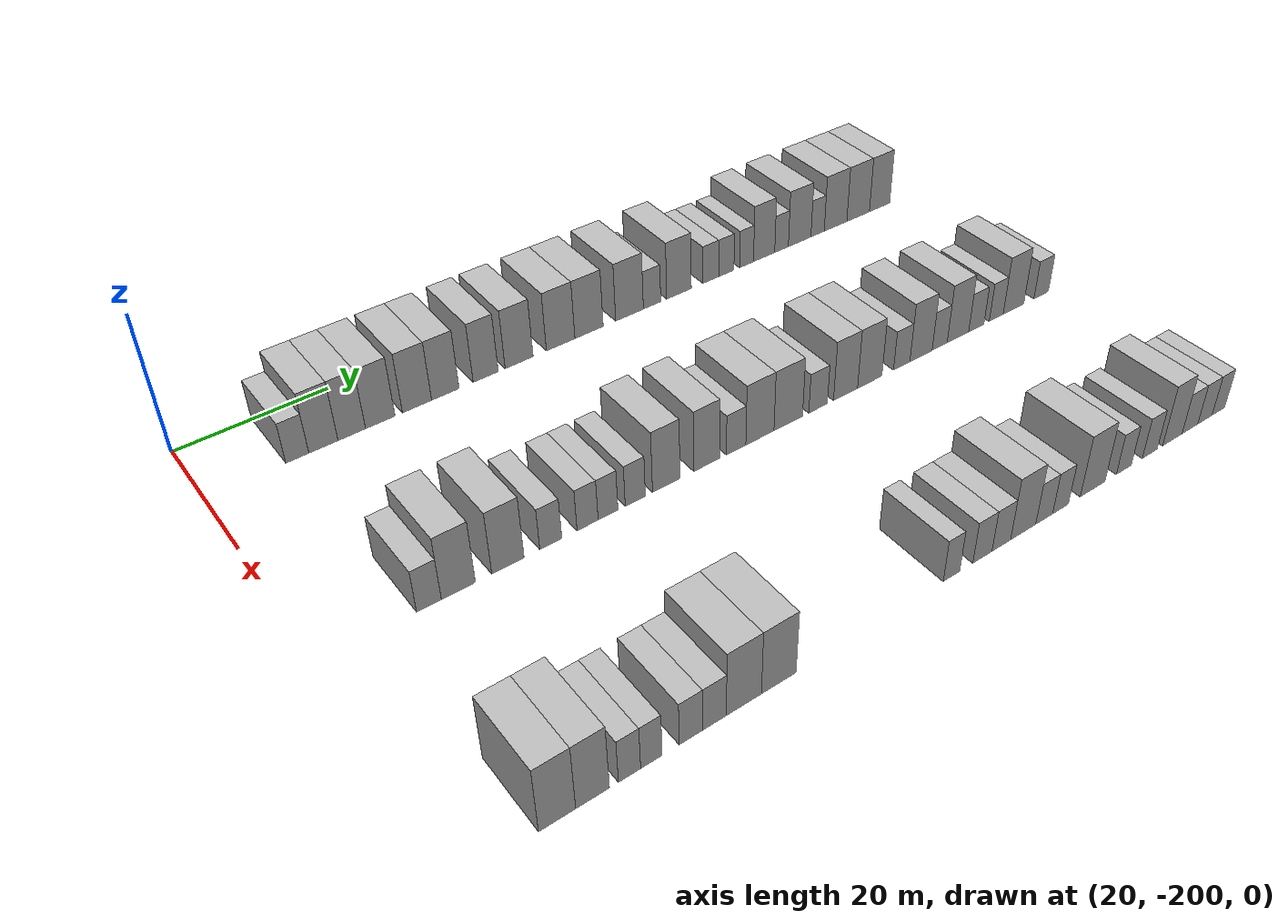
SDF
<sdf version="1.6">
 <world name="default">
  <model name="building_24">
   <static>1</static>
   <pose>25.0000 -188.5911 0 0.000000 0.000000 0.000000</pose>
   <link name="link">
    <pose>0 0 3.00 0 0 0</pose>
    <collision name="collision"><geometry><box><size>10.0000 2.9050 6.0000</size></box></geometry></collision>
    <visual name="visual">
     <cast_shadows>0</cast_shadows>
     <geometry><box><size>10.0000 2.9050 6.0000</size></box></geometry>
     <material>
      <script>
       <uri>model://HANNAS_wall/materials/scripts</uri>
       <uri>model://HANNAS_wall/materials/textures</uri>
       <name>vrc/HANNAS_wall</name>
      </script>
     </material>
    </visual>
   </link>
  </model>
  <model name="building_25">
   <static>1</static>
   <pose>25.0000 -185.2728 0 0.000000 0.000000 0.000000</pose>
   <link name="link">
    <pose>0 0 4.50 0 0 0</pose>
    <collision name="collision"><geometry><box><size>10.0000 3.7317 9.0000</size></box></geometry></collision>
    <visual name="visual">
     <cast_shadows>0</cast_shadows>
     <geometry><box><size>10.0000 3.7317 9.0000</size></box></geometry>
     <material>
      <script>
       <uri>model://HANNAS_wall/materials/scripts</uri>
       <uri>model://HANNAS_wall/materials/textures</uri>
       <name>vrc/HANNAS_wall</name>
      </script>
     </material>
    </visual>
   </link>
  </model>
  <model name="building_26">
   <static>1</static>
   <pose>25.0000 -181.6056 0 0.000000 0.000000 0.000000</pose>
   <link name="link">
    <pose>0 0 4.50 0 0 0</pose>
    <collision name="collision"><geometry><box><size>10.0000 3.6027 9.0000</size></box></geometry></collision>
    <visual name="visual">
     <cast_shadows>0</cast_shadows>
     <geometry><box><size>10.0000 3.6027 9.0000</size></box></geometry>
     <material>
      <script>
       <uri>model://HANNAS_wall/materials/scripts</uri>
       <uri>model://HANNAS_wall/materials/textures</uri>
       <name>vrc/HANNAS_wall</name>
      </script>
     </material>
    </visual>
   </link>
  </model>
  <model name="building_27">
   <static>1</static>
   <pose>25.0000 -177.8339 0 0.000000 0.000000 0.000000</pose>
   <link name="link">
    <pose>0 0 4.50 0 0 0</pose>
    <collision name="collision"><geometry><box><size>10.0000 3.9406 9.0000</size></box></geometry></collision>
    <visual name="visual">
     <cast_shadows>0</cast_shadows>
     <geometry><box><size>10.0000 3.9406 9.0000</size></box></geometry>
     <material>
      <script>
       <uri>model://HANNAS_wall/materials/scripts</uri>
       <uri>model://HANNAS_wall/materials/textures</uri>
       <name>vrc/HANNAS_wall</name>
      </script>
     </material>
    </visual>
   </link>
  </model>
  <model name="building_28">
   <static>1</static>
   <pose>25.0000 -172.8596 0 0.000000 0.000000 0.000000</pose>
   <link name="link">
    <pose>0 0 4.50 0 0 0</pose>
    <collision name="collision"><geometry><box><size>10.0000 4.0081 9.0000</size></box></geometry></collision>
    <visual name="visual">
     <cast_shadows>0</cast_shadows>
     <geometry><box><size>10.0000 4.0081 9.0000</size></box></geometry>
     <material>
      <script>
       <uri>model://HANNAS_wall/materials/scripts</uri>
       <uri>model://HANNAS_wall/materials/textures</uri>
       <name>vrc/HANNAS_wall</name>
      </script>
     </material>
    </visual>
   </link>
  </model>
  <model name="building_29">
   <static>1</static>
   <pose>25.0000 -168.9246 0 0.000000 0.000000 0.000000</pose>
   <link name="link">
    <pose>0 0 4.50 0 0 0</pose>
    <collision name="collision"><geometry><box><size>10.0000 3.8620 9.0000</size></box></geometry></collision>
    <visual name="visual">
     <cast_shadows>0</cast_shadows>
     <geometry><box><size>10.0000 3.8620 9.0000</size></box></geometry>
     <material>
      <script>
       <uri>model://HANNAS_wall/materials/scripts</uri>
       <uri>model://HANNAS_wall/materials/textures</uri>
       <name>vrc/HANNAS_wall</name>
      </script>
     </material>
    </visual>
   </link>
  </model>
  <model name="building_30">
   <static>1</static>
   <pose>25.0000 -163.1780 0 0.000000 0.000000 0.000000</pose>
   <link name="link">
    <pose>0 0 4.50 0 0 0</pose>
    <collision name="collision"><geometry><box><size>10.0000 3.6312 9.0000</size></box></geometry></collision>
    <visual name="visual">
     <cast_shadows>0</cast_shadows>
     <geometry><box><size>10.0000 3.6312 9.0000</size></box></geometry>
     <material>
      <script>
       <uri>model://HANNAS_wall/materials/scripts</uri>
       <uri>model://HANNAS_wall/materials/textures</uri>
       <name>vrc/HANNAS_wall</name>
      </script>
     </material>
    </visual>
   </link>
  </model>
  <model name="building_31">
   <static>1</static>
   <pose>25.0000 -158.2871 0 0.000000 0.000000 0.000000</pose>
   <link name="link">
    <pose>0 0 4.50 0 0 0</pose>
    <collision name="collision"><geometry><box><size>10.0000 4.1505 9.0000</size></box></geometry></collision>
    <visual name="visual">
     <cast_shadows>0</cast_shadows>
     <geometry><box><size>10.0000 4.1505 9.0000</size></box></geometry>
     <material>
      <script>
       <uri>model://HANNAS_wall/materials/scripts</uri>
       <uri>model://HANNAS_wall/materials/textures</uri>
       <name>vrc/HANNAS_wall</name>
      </script>
     </material>
    </visual>
   </link>
  </model>
  <model name="building_32">
   <static>1</static>
   <pose>25.0000 -152.0223 0 0.000000 0.000000 0.000000</pose>
   <link name="link">
    <pose>0 0 4.50 0 0 0</pose>
    <collision name="collision"><geometry><box><size>10.0000 4.3792 9.0000</size></box></geometry></collision>
    <visual name="visual">
     <cast_shadows>0</cast_shadows>
     <geometry><box><size>10.0000 4.3792 9.0000</size></box></geometry>
     <material>
      <script>
       <uri>model://HANNAS_wall/materials/scripts</uri>
       <uri>model://HANNAS_wall/materials/textures</uri>
       <name>vrc/HANNAS_wall</name>
      </script>
     </material>
    </visual>
   </link>
  </model>
  <model name="building_33">
   <static>1</static>
   <pose>25.0000 -147.6167 0 0.000000 0.000000 0.000000</pose>
   <link name="link">
    <pose>0 0 4.50 0 0 0</pose>
    <collision name="collision"><geometry><box><size>10.0000 4.4319 9.0000</size></box></geometry></collision>
    <visual name="visual">
     <cast_shadows>0</cast_shadows>
     <geometry><box><size>10.0000 4.4319 9.0000</size></box></geometry>
     <material>
      <script>
       <uri>model://HANNAS_wall/materials/scripts</uri>
       <uri>model://HANNAS_wall/materials/textures</uri>
       <name>vrc/HANNAS_wall</name>
      </script>
     </material>
    </visual>
   </link>
  </model>
  <model name="building_34">
   <static>1</static>
   <pose>25.0000 -141.1588 0 0.000000 0.000000 0.000000</pose>
   <link name="link">
    <pose>0 0 4.50 0 0 0</pose>
    <collision name="collision"><geometry><box><size>10.0000 4.4839 9.0000</size></box></geometry></collision>
    <visual name="visual">
     <cast_shadows>0</cast_shadows>
     <geometry><box><size>10.0000 4.4839 9.0000</size></box></geometry>
     <material>
      <script>
       <uri>model://HANNAS_wall/materials/scripts</uri>
       <uri>model://HANNAS_wall/materials/textures</uri>
       <name>vrc/HANNAS_wall</name>
      </script>
     </material>
    </visual>
   </link>
  </model>
  <model name="building_35">
   <static>1</static>
   <pose>25.0000 -137.4873 0 0.000000 0.000000 0.000000</pose>
   <link name="link">
    <pose>0 0 3.00 0 0 0</pose>
    <collision name="collision"><geometry><box><size>10.0000 2.8592 6.0000</size></box></geometry></collision>
    <visual name="visual">
     <cast_shadows>0</cast_shadows>
     <geometry><box><size>10.0000 2.8592 6.0000</size></box></geometry>
     <material>
      <script>
       <uri>model://HANNAS_wall/materials/scripts</uri>
       <uri>model://HANNAS_wall/materials/textures</uri>
       <name>vrc/HANNAS_wall</name>
      </script>
     </material>
    </visual>
   </link>
  </model>
  <model name="building_36">
   <static>1</static>
   <pose>25.0000 -132.9825 0 0.000000 0.000000 0.000000</pose>
   <link name="link">
    <pose>0 0 4.50 0 0 0</pose>
    <collision name="collision"><geometry><box><size>10.0000 4.1504 9.0000</size></box></geometry></collision>
    <visual name="visual">
     <cast_shadows>0</cast_shadows>
     <geometry><box><size>10.0000 4.1504 9.0000</size></box></geometry>
     <material>
      <script>
       <uri>model://HANNAS_wall/materials/scripts</uri>
       <uri>model://HANNAS_wall/materials/textures</uri>
       <name>vrc/HANNAS_wall</name>
      </script>
     </material>
    </visual>
   </link>
  </model>
  <model name="building_37">
   <static>1</static>
   <pose>25.0000 -127.5527 0 0.000000 0.000000 0.000000</pose>
   <link name="link">
    <pose>0 0 3.00 0 0 0</pose>
    <collision name="collision"><geometry><box><size>10.0000 2.7092 6.0000</size></box></geometry></collision>
    <visual name="visual">
     <cast_shadows>0</cast_shadows>
     <geometry><box><size>10.0000 2.7092 6.0000</size></box></geometry>
     <material>
      <script>
       <uri>model://HANNAS_wall/materials/scripts</uri>
       <uri>model://HANNAS_wall/materials/textures</uri>
       <name>vrc/HANNAS_wall</name>
      </script>
     </material>
    </visual>
   </link>
  </model>
  <model name="building_38">
   <static>1</static>
   <pose>25.0000 -124.8525 0 0.000000 0.000000 0.000000</pose>
   <link name="link">
    <pose>0 0 3.00 0 0 0</pose>
    <collision name="collision"><geometry><box><size>10.0000 2.6913 6.0000</size></box></geometry></collision>
    <visual name="visual">
     <cast_shadows>0</cast_shadows>
     <geometry><box><size>10.0000 2.6913 6.0000</size></box></geometry>
     <material>
      <script>
       <uri>model://HANNAS_wall/materials/scripts</uri>
       <uri>model://HANNAS_wall/materials/textures</uri>
       <name>vrc/HANNAS_wall</name>
      </script>
     </material>
    </visual>
   </link>
  </model>
  <model name="building_39">
   <static>1</static>
   <pose>25.0000 -121.2615 0 0.000000 0.000000 0.000000</pose>
   <link name="link">
    <pose>0 0 3.00 0 0 0</pose>
    <collision name="collision"><geometry><box><size>10.0000 2.4906 6.0000</size></box></geometry></collision>
    <visual name="visual">
     <cast_shadows>0</cast_shadows>
     <geometry><box><size>10.0000 2.4906 6.0000</size></box></geometry>
     <material>
      <script>
       <uri>model://HANNAS_wall/materials/scripts</uri>
       <uri>model://HANNAS_wall/materials/textures</uri>
       <name>vrc/HANNAS_wall</name>
      </script>
     </material>
    </visual>
   </link>
  </model>
  <model name="building_40">
   <static>1</static>
   <pose>25.0000 -118.0930 0 0.000000 0.000000 0.000000</pose>
   <link name="link">
    <pose>0 0 4.50 0 0 0</pose>
    <collision name="collision"><geometry><box><size>10.0000 3.8465 9.0000</size></box></geometry></collision>
    <visual name="visual">
     <cast_shadows>0</cast_shadows>
     <geometry><box><size>10.0000 3.8465 9.0000</size></box></geometry>
     <material>
      <script>
       <uri>model://HANNAS_wall/materials/scripts</uri>
       <uri>model://HANNAS_wall/materials/textures</uri>
       <name>vrc/HANNAS_wall</name>
      </script>
     </material>
    </visual>
   </link>
  </model>
  <model name="building_41">
   <static>1</static>
   <pose>25.0000 -114.9120 0 0.000000 0.000000 0.000000</pose>
   <link name="link">
    <pose>0 0 3.00 0 0 0</pose>
    <collision name="collision"><geometry><box><size>10.0000 2.5156 6.0000</size></box></geometry></collision>
    <visual name="visual">
     <cast_shadows>0</cast_shadows>
     <geometry><box><size>10.0000 2.5156 6.0000</size></box></geometry>
     <material>
      <script>
       <uri>model://HANNAS_wall/materials/scripts</uri>
       <uri>model://HANNAS_wall/materials/textures</uri>
       <name>vrc/HANNAS_wall</name>
      </script>
     </material>
    </visual>
   </link>
  </model>
  <model name="building_42">
   <static>1</static>
   <pose>25.0000 -111.5433 0 0.000000 0.000000 0.000000</pose>
   <link name="link">
    <pose>0 0 4.50 0 0 0</pose>
    <collision name="collision"><geometry><box><size>10.0000 4.2218 9.0000</size></box></geometry></collision>
    <visual name="visual">
     <cast_shadows>0</cast_shadows>
     <geometry><box><size>10.0000 4.2218 9.0000</size></box></geometry>
     <material>
      <script>
       <uri>model://HANNAS_wall/materials/scripts</uri>
       <uri>model://HANNAS_wall/materials/textures</uri>
       <name>vrc/HANNAS_wall</name>
      </script>
     </material>
    </visual>
   </link>
  </model>
  <model name="building_43">
   <static>1</static>
   <pose>25.0000 -108.1688 0 0.000000 0.000000 0.000000</pose>
   <link name="link">
    <pose>0 0 3.00 0 0 0</pose>
    <collision name="collision"><geometry><box><size>10.0000 2.5272 6.0000</size></box></geometry></collision>
    <visual name="visual">
     <cast_shadows>0</cast_shadows>
     <geometry><box><size>10.0000 2.5272 6.0000</size></box></geometry>
     <material>
      <script>
       <uri>model://HANNAS_wall/materials/scripts</uri>
       <uri>model://HANNAS_wall/materials/textures</uri>
       <name>vrc/HANNAS_wall</name>
      </script>
     </material>
    </visual>
   </link>
  </model>
  <model name="building_44">
   <static>1</static>
   <pose>25.0000 -104.7201 0 0.000000 0.000000 0.000000</pose>
   <link name="link">
    <pose>0 0 4.50 0 0 0</pose>
    <collision name="collision"><geometry><box><size>10.0000 4.3703 9.0000</size></box></geometry></collision>
    <visual name="visual">
     <cast_shadows>0</cast_shadows>
     <geometry><box><size>10.0000 4.3703 9.0000</size></box></geometry>
     <material>
      <script>
       <uri>model://HANNAS_wall/materials/scripts</uri>
       <uri>model://HANNAS_wall/materials/textures</uri>
       <name>vrc/HANNAS_wall</name>
      </script>
     </material>
    </visual>
   </link>
  </model>
  <model name="building_45">
   <static>1</static>
   <pose>25.0000 -100.3154 0 0.000000 0.000000 0.000000</pose>
   <link name="link">
    <pose>0 0 4.50 0 0 0</pose>
    <collision name="collision"><geometry><box><size>10.0000 4.4391 9.0000</size></box></geometry></collision>
    <visual name="visual">
     <cast_shadows>0</cast_shadows>
     <geometry><box><size>10.0000 4.4391 9.0000</size></box></geometry>
     <material>
      <script>
       <uri>model://HANNAS_wall/materials/scripts</uri>
       <uri>model://HANNAS_wall/materials/textures</uri>
       <name>vrc/HANNAS_wall</name>
      </script>
     </material>
    </visual>
   </link>
  </model>
  <model name="building_46">
   <static>1</static>
   <pose>25.0000 -96.0658 0 0.000000 0.000000 0.000000</pose>
   <link name="link">
    <pose>0 0 4.50 0 0 0</pose>
    <collision name="collision"><geometry><box><size>10.0000 4.0601 9.0000</size></box></geometry></collision>
    <visual name="visual">
     <cast_shadows>0</cast_shadows>
     <geometry><box><size>10.0000 4.0601 9.0000</size></box></geometry>
     <material>
      <script>
       <uri>model://HANNAS_wall/materials/scripts</uri>
       <uri>model://HANNAS_wall/materials/textures</uri>
       <name>vrc/HANNAS_wall</name>
      </script>
     </material>
    </visual>
   </link>
  </model>
  <model name="building_167">
   <static>1</static>
   <pose>55.0000 -187.3549 0 0.000000 0.000000 0.000000</pose>
   <link name="link">
    <pose>0 0 3.00 0 0 0</pose>
    <collision name="collision"><geometry><box><size>10.0000 2.9119 6.0000</size></box></geometry></collision>
    <visual name="visual">
     <cast_shadows>0</cast_shadows>
     <geometry><box><size>10.0000 2.9119 6.0000</size></box></geometry>
     <material>
      <script>
       <uri>model://HANNAS_wall/materials/scripts</uri>
       <uri>model://HANNAS_wall/materials/textures</uri>
       <name>vrc/HANNAS_wall</name>
      </script>
     </material>
    </visual>
   </link>
  </model>
  <model name="building_168">
   <static>1</static>
   <pose>55.0000 -183.8552 0 0.000000 0.000000 0.000000</pose>
   <link name="link">
    <pose>0 0 4.50 0 0 0</pose>
    <collision name="collision"><geometry><box><size>10.0000 4.0874 9.0000</size></box></geometry></collision>
    <visual name="visual">
     <cast_shadows>0</cast_shadows>
     <geometry><box><size>10.0000 4.0874 9.0000</size></box></geometry>
     <material>
      <script>
       <uri>model://HANNAS_wall/materials/scripts</uri>
       <uri>model://HANNAS_wall/materials/textures</uri>
       <name>vrc/HANNAS_wall</name>
      </script>
     </material>
    </visual>
   </link>
  </model>
  <model name="building_169">
   <static>1</static>
   <pose>55.0000 -177.7942 0 0.000000 0.000000 0.000000</pose>
   <link name="link">
    <pose>0 0 4.50 0 0 0</pose>
    <collision name="collision"><geometry><box><size>10.0000 4.0347 9.0000</size></box></geometry></collision>
    <visual name="visual">
     <cast_shadows>0</cast_shadows>
     <geometry><box><size>10.0000 4.0347 9.0000</size></box></geometry>
     <material>
      <script>
       <uri>model://HANNAS_wall/materials/scripts</uri>
       <uri>model://HANNAS_wall/materials/textures</uri>
       <name>vrc/HANNAS_wall</name>
      </script>
     </material>
    </visual>
   </link>
  </model>
  <model name="building_170">
   <static>1</static>
   <pose>55.0000 -172.3576 0 0.000000 0.000000 0.000000</pose>
   <link name="link">
    <pose>0 0 3.00 0 0 0</pose>
    <collision name="collision"><geometry><box><size>10.0000 2.8383 6.0000</size></box></geometry></collision>
    <visual name="visual">
     <cast_shadows>0</cast_shadows>
     <geometry><box><size>10.0000 2.8383 6.0000</size></box></geometry>
     <material>
      <script>
       <uri>model://HANNAS_wall/materials/scripts</uri>
       <uri>model://HANNAS_wall/materials/textures</uri>
       <name>vrc/HANNAS_wall</name>
      </script>
     </material>
    </visual>
   </link>
  </model>
  <model name="building_171">
   <static>1</static>
   <pose>55.0000 -167.5377 0 0.000000 0.000000 0.000000</pose>
   <link name="link">
    <pose>0 0 3.00 0 0 0</pose>
    <collision name="collision"><geometry><box><size>10.0000 2.8016 6.0000</size></box></geometry></collision>
    <visual name="visual">
     <cast_shadows>0</cast_shadows>
     <geometry><box><size>10.0000 2.8016 6.0000</size></box></geometry>
     <material>
      <script>
       <uri>model://HANNAS_wall/materials/scripts</uri>
       <uri>model://HANNAS_wall/materials/textures</uri>
       <name>vrc/HANNAS_wall</name>
      </script>
     </material>
    </visual>
   </link>
  </model>
  <model name="building_172">
   <static>1</static>
   <pose>55.0000 -164.8018 0 0.000000 0.000000 0.000000</pose>
   <link name="link">
    <pose>0 0 3.00 0 0 0</pose>
    <collision name="collision"><geometry><box><size>10.0000 2.6701 6.0000</size></box></geometry></collision>
    <visual name="visual">
     <cast_shadows>0</cast_shadows>
     <geometry><box><size>10.0000 2.6701 6.0000</size></box></geometry>
     <material>
      <script>
       <uri>model://HANNAS_wall/materials/scripts</uri>
       <uri>model://HANNAS_wall/materials/textures</uri>
       <name>vrc/HANNAS_wall</name>
      </script>
     </material>
    </visual>
   </link>
  </model>
  <model name="building_173">
   <static>1</static>
   <pose>55.0000 -161.0786 0 0.000000 0.000000 0.000000</pose>
   <link name="link">
    <pose>0 0 3.00 0 0 0</pose>
    <collision name="collision"><geometry><box><size>10.0000 2.7764 6.0000</size></box></geometry></collision>
    <visual name="visual">
     <cast_shadows>0</cast_shadows>
     <geometry><box><size>10.0000 2.7764 6.0000</size></box></geometry>
     <material>
      <script>
       <uri>model://HANNAS_wall/materials/scripts</uri>
       <uri>model://HANNAS_wall/materials/textures</uri>
       <name>vrc/HANNAS_wall</name>
      </script>
     </material>
    </visual>
   </link>
  </model>
  <model name="building_174">
   <static>1</static>
   <pose>55.0000 -156.7425 0 0.000000 0.000000 0.000000</pose>
   <link name="link">
    <pose>0 0 4.50 0 0 0</pose>
    <collision name="collision"><geometry><box><size>10.0000 3.8958 9.0000</size></box></geometry></collision>
    <visual name="visual">
     <cast_shadows>0</cast_shadows>
     <geometry><box><size>10.0000 3.8958 9.0000</size></box></geometry>
     <material>
      <script>
       <uri>model://HANNAS_wall/materials/scripts</uri>
       <uri>model://HANNAS_wall/materials/textures</uri>
       <name>vrc/HANNAS_wall</name>
      </script>
     </material>
    </visual>
   </link>
  </model>
  <model name="building_175">
   <static>1</static>
   <pose>55.0000 -150.9045 0 0.000000 0.000000 0.000000</pose>
   <link name="link">
    <pose>0 0 4.50 0 0 0</pose>
    <collision name="collision"><geometry><box><size>10.0000 3.7802 9.0000</size></box></geometry></collision>
    <visual name="visual">
     <cast_shadows>0</cast_shadows>
     <geometry><box><size>10.0000 3.7802 9.0000</size></box></geometry>
     <material>
      <script>
       <uri>model://HANNAS_wall/materials/scripts</uri>
       <uri>model://HANNAS_wall/materials/textures</uri>
       <name>vrc/HANNAS_wall</name>
      </script>
     </material>
    </visual>
   </link>
  </model>
  <model name="building_176">
   <static>1</static>
   <pose>55.0000 -146.5587 0 0.000000 0.000000 0.000000</pose>
   <link name="link">
    <pose>0 0 3.00 0 0 0</pose>
    <collision name="collision"><geometry><box><size>10.0000 2.9114 6.0000</size></box></geometry></collision>
    <visual name="visual">
     <cast_shadows>0</cast_shadows>
     <geometry><box><size>10.0000 2.9114 6.0000</size></box></geometry>
     <material>
      <script>
       <uri>model://HANNAS_wall/materials/scripts</uri>
       <uri>model://HANNAS_wall/materials/textures</uri>
       <name>vrc/HANNAS_wall</name>
      </script>
     </material>
    </visual>
   </link>
  </model>
  <model name="building_177">
   <static>1</static>
   <pose>55.0000 -142.9433 0 0.000000 0.000000 0.000000</pose>
   <link name="link">
    <pose>0 0 4.50 0 0 0</pose>
    <collision name="collision"><geometry><box><size>10.0000 4.3194 9.0000</size></box></geometry></collision>
    <visual name="visual">
     <cast_shadows>0</cast_shadows>
     <geometry><box><size>10.0000 4.3194 9.0000</size></box></geometry>
     <material>
      <script>
       <uri>model://HANNAS_wall/materials/scripts</uri>
       <uri>model://HANNAS_wall/materials/textures</uri>
       <name>vrc/HANNAS_wall</name>
      </script>
     </material>
    </visual>
   </link>
  </model>
  <model name="building_178">
   <static>1</static>
   <pose>55.0000 -138.5398 0 0.000000 0.000000 0.000000</pose>
   <link name="link">
    <pose>0 0 4.50 0 0 0</pose>
    <collision name="collision"><geometry><box><size>10.0000 4.4876 9.0000</size></box></geometry></collision>
    <visual name="visual">
     <cast_shadows>0</cast_shadows>
     <geometry><box><size>10.0000 4.4876 9.0000</size></box></geometry>
     <material>
      <script>
       <uri>model://HANNAS_wall/materials/scripts</uri>
       <uri>model://HANNAS_wall/materials/textures</uri>
       <name>vrc/HANNAS_wall</name>
      </script>
     </material>
    </visual>
   </link>
  </model>
  <model name="building_179">
   <static>1</static>
   <pose>55.0000 -133.7980 0 0.000000 0.000000 0.000000</pose>
   <link name="link">
    <pose>0 0 3.00 0 0 0</pose>
    <collision name="collision"><geometry><box><size>10.0000 2.9959 6.0000</size></box></geometry></collision>
    <visual name="visual">
     <cast_shadows>0</cast_shadows>
     <geometry><box><size>10.0000 2.9959 6.0000</size></box></geometry>
     <material>
      <script>
       <uri>model://HANNAS_wall/materials/scripts</uri>
       <uri>model://HANNAS_wall/materials/textures</uri>
       <name>vrc/HANNAS_wall</name>
      </script>
     </material>
    </visual>
   </link>
  </model>
  <model name="building_180">
   <static>1</static>
   <pose>55.0000 -129.3139 0 0.000000 0.000000 0.000000</pose>
   <link name="link">
    <pose>0 0 4.50 0 0 0</pose>
    <collision name="collision"><geometry><box><size>10.0000 3.9723 9.0000</size></box></geometry></collision>
    <visual name="visual">
     <cast_shadows>0</cast_shadows>
     <geometry><box><size>10.0000 3.9723 9.0000</size></box></geometry>
     <material>
      <script>
       <uri>model://HANNAS_wall/materials/scripts</uri>
       <uri>model://HANNAS_wall/materials/textures</uri>
       <name>vrc/HANNAS_wall</name>
      </script>
     </material>
    </visual>
   </link>
  </model>
  <model name="building_181">
   <static>1</static>
   <pose>55.0000 -125.2691 0 0.000000 0.000000 0.000000</pose>
   <link name="link">
    <pose>0 0 4.50 0 0 0</pose>
    <collision name="collision"><geometry><box><size>10.0000 4.1173 9.0000</size></box></geometry></collision>
    <visual name="visual">
     <cast_shadows>0</cast_shadows>
     <geometry><box><size>10.0000 4.1173 9.0000</size></box></geometry>
     <material>
      <script>
       <uri>model://HANNAS_wall/materials/scripts</uri>
       <uri>model://HANNAS_wall/materials/textures</uri>
       <name>vrc/HANNAS_wall</name>
      </script>
     </material>
    </visual>
   </link>
  </model>
  <model name="building_182">
   <static>1</static>
   <pose>55.0000 -119.7920 0 0.000000 0.000000 0.000000</pose>
   <link name="link">
    <pose>0 0 3.00 0 0 0</pose>
    <collision name="collision"><geometry><box><size>10.0000 2.8369 6.0000</size></box></geometry></collision>
    <visual name="visual">
     <cast_shadows>0</cast_shadows>
     <geometry><box><size>10.0000 2.8369 6.0000</size></box></geometry>
     <material>
      <script>
       <uri>model://HANNAS_wall/materials/scripts</uri>
       <uri>model://HANNAS_wall/materials/textures</uri>
       <name>vrc/HANNAS_wall</name>
      </script>
     </material>
    </visual>
   </link>
  </model>
  <model name="building_183">
   <static>1</static>
   <pose>55.0000 -116.4003 0 0.000000 0.000000 0.000000</pose>
   <link name="link">
    <pose>0 0 4.50 0 0 0</pose>
    <collision name="collision"><geometry><box><size>10.0000 3.9465 9.0000</size></box></geometry></collision>
    <visual name="visual">
     <cast_shadows>0</cast_shadows>
     <geometry><box><size>10.0000 3.9465 9.0000</size></box></geometry>
     <material>
      <script>
       <uri>model://HANNAS_wall/materials/scripts</uri>
       <uri>model://HANNAS_wall/materials/textures</uri>
       <name>vrc/HANNAS_wall</name>
      </script>
     </material>
    </visual>
   </link>
  </model>
  <model name="building_184">
   <static>1</static>
   <pose>55.0000 -113.0739 0 0.000000 0.000000 0.000000</pose>
   <link name="link">
    <pose>0 0 3.00 0 0 0</pose>
    <collision name="collision"><geometry><box><size>10.0000 2.7063 6.0000</size></box></geometry></collision>
    <visual name="visual">
     <cast_shadows>0</cast_shadows>
     <geometry><box><size>10.0000 2.7063 6.0000</size></box></geometry>
     <material>
      <script>
       <uri>model://HANNAS_wall/materials/scripts</uri>
       <uri>model://HANNAS_wall/materials/textures</uri>
       <name>vrc/HANNAS_wall</name>
      </script>
     </material>
    </visual>
   </link>
  </model>
  <model name="building_185">
   <static>1</static>
   <pose>55.0000 -109.7476 0 0.000000 0.000000 0.000000</pose>
   <link name="link">
    <pose>0 0 4.50 0 0 0</pose>
    <collision name="collision"><geometry><box><size>10.0000 3.9463 9.0000</size></box></geometry></collision>
    <visual name="visual">
     <cast_shadows>0</cast_shadows>
     <geometry><box><size>10.0000 3.9463 9.0000</size></box></geometry>
     <material>
      <script>
       <uri>model://HANNAS_wall/materials/scripts</uri>
       <uri>model://HANNAS_wall/materials/textures</uri>
       <name>vrc/HANNAS_wall</name>
      </script>
     </material>
    </visual>
   </link>
  </model>
  <model name="building_186">
   <static>1</static>
   <pose>55.0000 -106.3499 0 0.000000 0.000000 0.000000</pose>
   <link name="link">
    <pose>0 0 3.00 0 0 0</pose>
    <collision name="collision"><geometry><box><size>10.0000 2.8491 6.0000</size></box></geometry></collision>
    <visual name="visual">
     <cast_shadows>0</cast_shadows>
     <geometry><box><size>10.0000 2.8491 6.0000</size></box></geometry>
     <material>
      <script>
       <uri>model://HANNAS_wall/materials/scripts</uri>
       <uri>model://HANNAS_wall/materials/textures</uri>
       <name>vrc/HANNAS_wall</name>
      </script>
     </material>
    </visual>
   </link>
  </model>
  <model name="building_187">
   <static>1</static>
   <pose>55.0000 -102.6102 0 0.000000 0.000000 0.000000</pose>
   <link name="link">
    <pose>0 0 3.00 0 0 0</pose>
    <collision name="collision"><geometry><box><size>10.0000 2.6303 6.0000</size></box></geometry></collision>
    <visual name="visual">
     <cast_shadows>0</cast_shadows>
     <geometry><box><size>10.0000 2.6303 6.0000</size></box></geometry>
     <material>
      <script>
       <uri>model://HANNAS_wall/materials/scripts</uri>
       <uri>model://HANNAS_wall/materials/textures</uri>
       <name>vrc/HANNAS_wall</name>
      </script>
     </material>
    </visual>
   </link>
  </model>
  <model name="building_188">
   <static>1</static>
   <pose>55.0000 -99.3042 0 0.000000 0.000000 0.000000</pose>
   <link name="link">
    <pose>0 0 4.50 0 0 0</pose>
    <collision name="collision"><geometry><box><size>10.0000 3.9815 9.0000</size></box></geometry></collision>
    <visual name="visual">
     <cast_shadows>0</cast_shadows>
     <geometry><box><size>10.0000 3.9815 9.0000</size></box></geometry>
     <material>
      <script>
       <uri>model://HANNAS_wall/materials/scripts</uri>
       <uri>model://HANNAS_wall/materials/textures</uri>
       <name>vrc/HANNAS_wall</name>
      </script>
     </material>
    </visual>
   </link>
  </model>
  <model name="building_189">
   <static>1</static>
   <pose>55.0000 -93.8847 0 0.000000 0.000000 0.000000</pose>
   <link name="link">
    <pose>0 0 3.00 0 0 0</pose>
    <collision name="collision"><geometry><box><size>10.0000 2.8576 6.0000</size></box></geometry></collision>
    <visual name="visual">
     <cast_shadows>0</cast_shadows>
     <geometry><box><size>10.0000 2.8576 6.0000</size></box></geometry>
     <material>
      <script>
       <uri>model://HANNAS_wall/materials/scripts</uri>
       <uri>model://HANNAS_wall/materials/textures</uri>
       <name>vrc/HANNAS_wall</name>
      </script>
     </material>
    </visual>
   </link>
  </model>
  <model name="building_294">
   <static>1</static>
   <pose>85.0000 -190.5083 0 0.000000 0.000000 0.000000</pose>
   <link name="link">
    <pose>0 0 4.50 0 0 0</pose>
    <collision name="collision"><geometry><box><size>10.0000 3.9693 9.0000</size></box></geometry></collision>
    <visual name="visual">
     <cast_shadows>0</cast_shadows>
     <geometry><box><size>10.0000 3.9693 9.0000</size></box></geometry>
     <material>
      <script>
       <uri>model://HANNAS_wall/materials/scripts</uri>
       <uri>model://HANNAS_wall/materials/textures</uri>
       <name>vrc/HANNAS_wall</name>
      </script>
     </material>
    </visual>
   </link>
  </model>
  <model name="building_295">
   <static>1</static>
   <pose>85.0000 -186.6767 0 0.000000 0.000000 0.000000</pose>
   <link name="link">
    <pose>0 0 4.50 0 0 0</pose>
    <collision name="collision"><geometry><box><size>10.0000 3.6939 9.0000</size></box></geometry></collision>
    <visual name="visual">
     <cast_shadows>0</cast_shadows>
     <geometry><box><size>10.0000 3.6939 9.0000</size></box></geometry>
     <material>
      <script>
       <uri>model://HANNAS_wall/materials/scripts</uri>
       <uri>model://HANNAS_wall/materials/textures</uri>
       <name>vrc/HANNAS_wall</name>
      </script>
     </material>
    </visual>
   </link>
  </model>
  <model name="building_296">
   <static>1</static>
   <pose>85.0000 -182.5768 0 0.000000 0.000000 0.000000</pose>
   <link name="link">
    <pose>0 0 3.00 0 0 0</pose>
    <collision name="collision"><geometry><box><size>10.0000 2.5060 6.0000</size></box></geometry></collision>
    <visual name="visual">
     <cast_shadows>0</cast_shadows>
     <geometry><box><size>10.0000 2.5060 6.0000</size></box></geometry>
     <material>
      <script>
       <uri>model://HANNAS_wall/materials/scripts</uri>
       <uri>model://HANNAS_wall/materials/textures</uri>
       <name>vrc/HANNAS_wall</name>
      </script>
     </material>
    </visual>
   </link>
  </model>
  <model name="building_297">
   <static>1</static>
   <pose>85.0000 -180.0903 0 0.000000 0.000000 0.000000</pose>
   <link name="link">
    <pose>0 0 3.00 0 0 0</pose>
    <collision name="collision"><geometry><box><size>10.0000 2.4669 6.0000</size></box></geometry></collision>
    <visual name="visual">
     <cast_shadows>0</cast_shadows>
     <geometry><box><size>10.0000 2.4669 6.0000</size></box></geometry>
     <material>
      <script>
       <uri>model://HANNAS_wall/materials/scripts</uri>
       <uri>model://HANNAS_wall/materials/textures</uri>
       <name>vrc/HANNAS_wall</name>
      </script>
     </material>
    </visual>
   </link>
  </model>
  <model name="building_298">
   <static>1</static>
   <pose>85.0000 -175.4629 0 0.000000 0.000000 0.000000</pose>
   <link name="link">
    <pose>0 0 3.00 0 0 0</pose>
    <collision name="collision"><geometry><box><size>10.0000 2.7880 6.0000</size></box></geometry></collision>
    <visual name="visual">
     <cast_shadows>0</cast_shadows>
     <geometry><box><size>10.0000 2.7880 6.0000</size></box></geometry>
     <material>
      <script>
       <uri>model://HANNAS_wall/materials/scripts</uri>
       <uri>model://HANNAS_wall/materials/textures</uri>
       <name>vrc/HANNAS_wall</name>
      </script>
     </material>
    </visual>
   </link>
  </model>
  <model name="building_299">
   <static>1</static>
   <pose>85.0000 -172.6394 0 0.000000 0.000000 0.000000</pose>
   <link name="link">
    <pose>0 0 3.00 0 0 0</pose>
    <collision name="collision"><geometry><box><size>10.0000 2.8589 6.0000</size></box></geometry></collision>
    <visual name="visual">
     <cast_shadows>0</cast_shadows>
     <geometry><box><size>10.0000 2.8589 6.0000</size></box></geometry>
     <material>
      <script>
       <uri>model://HANNAS_wall/materials/scripts</uri>
       <uri>model://HANNAS_wall/materials/textures</uri>
       <name>vrc/HANNAS_wall</name>
      </script>
     </material>
    </visual>
   </link>
  </model>
  <model name="building_300">
   <static>1</static>
   <pose>85.0000 -169.0309 0 0.000000 0.000000 0.000000</pose>
   <link name="link">
    <pose>0 0 4.50 0 0 0</pose>
    <collision name="collision"><geometry><box><size>10.0000 4.3581 9.0000</size></box></geometry></collision>
    <visual name="visual">
     <cast_shadows>0</cast_shadows>
     <geometry><box><size>10.0000 4.3581 9.0000</size></box></geometry>
     <material>
      <script>
       <uri>model://HANNAS_wall/materials/scripts</uri>
       <uri>model://HANNAS_wall/materials/textures</uri>
       <name>vrc/HANNAS_wall</name>
      </script>
     </material>
    </visual>
   </link>
  </model>
  <model name="building_301">
   <static>1</static>
   <pose>85.0000 -164.6393 0 0.000000 0.000000 0.000000</pose>
   <link name="link">
    <pose>0 0 4.50 0 0 0</pose>
    <collision name="collision"><geometry><box><size>10.0000 4.4251 9.0000</size></box></geometry></collision>
    <visual name="visual">
     <cast_shadows>0</cast_shadows>
     <geometry><box><size>10.0000 4.4251 9.0000</size></box></geometry>
     <material>
      <script>
       <uri>model://HANNAS_wall/materials/scripts</uri>
       <uri>model://HANNAS_wall/materials/textures</uri>
       <name>vrc/HANNAS_wall</name>
      </script>
     </material>
    </visual>
   </link>
  </model>
  <model name="building_302">
   <static>1</static>
   <pose>85.0000 -140.7509 0 0.000000 0.000000 0.000000</pose>
   <link name="link">
    <pose>0 0 3.00 0 0 0</pose>
    <collision name="collision"><geometry><box><size>10.0000 2.4505 6.0000</size></box></geometry></collision>
    <visual name="visual">
     <cast_shadows>0</cast_shadows>
     <geometry><box><size>10.0000 2.4505 6.0000</size></box></geometry>
     <material>
      <script>
       <uri>model://HANNAS_wall/materials/scripts</uri>
       <uri>model://HANNAS_wall/materials/textures</uri>
       <name>vrc/HANNAS_wall</name>
      </script>
     </material>
    </visual>
   </link>
  </model>
  <model name="building_303">
   <static>1</static>
   <pose>85.0000 -136.0565 0 0.000000 0.000000 0.000000</pose>
   <link name="link">
    <pose>0 0 3.00 0 0 0</pose>
    <collision name="collision"><geometry><box><size>10.0000 2.9384 6.0000</size></box></geometry></collision>
    <visual name="visual">
     <cast_shadows>0</cast_shadows>
     <geometry><box><size>10.0000 2.9384 6.0000</size></box></geometry>
     <material>
      <script>
       <uri>model://HANNAS_wall/materials/scripts</uri>
       <uri>model://HANNAS_wall/materials/textures</uri>
       <name>vrc/HANNAS_wall</name>
      </script>
     </material>
    </visual>
   </link>
  </model>
  <model name="building_304">
   <static>1</static>
   <pose>85.0000 -133.1301 0 0.000000 0.000000 0.000000</pose>
   <link name="link">
    <pose>0 0 3.00 0 0 0</pose>
    <collision name="collision"><geometry><box><size>10.0000 2.9144 6.0000</size></box></geometry></collision>
    <visual name="visual">
     <cast_shadows>0</cast_shadows>
     <geometry><box><size>10.0000 2.9144 6.0000</size></box></geometry>
     <material>
      <script>
       <uri>model://HANNAS_wall/materials/scripts</uri>
       <uri>model://HANNAS_wall/materials/textures</uri>
       <name>vrc/HANNAS_wall</name>
      </script>
     </material>
    </visual>
   </link>
  </model>
  <model name="building_305">
   <static>1</static>
   <pose>85.0000 -129.6558 0 0.000000 0.000000 0.000000</pose>
   <link name="link">
    <pose>0 0 4.50 0 0 0</pose>
    <collision name="collision"><geometry><box><size>10.0000 4.0342 9.0000</size></box></geometry></collision>
    <visual name="visual">
     <cast_shadows>0</cast_shadows>
     <geometry><box><size>10.0000 4.0342 9.0000</size></box></geometry>
     <material>
      <script>
       <uri>model://HANNAS_wall/materials/scripts</uri>
       <uri>model://HANNAS_wall/materials/textures</uri>
       <name>vrc/HANNAS_wall</name>
      </script>
     </material>
    </visual>
   </link>
  </model>
  <model name="building_306">
   <static>1</static>
   <pose>85.0000 -126.2573 0 0.000000 0.000000 0.000000</pose>
   <link name="link">
    <pose>0 0 3.00 0 0 0</pose>
    <collision name="collision"><geometry><box><size>10.0000 2.7630 6.0000</size></box></geometry></collision>
    <visual name="visual">
     <cast_shadows>0</cast_shadows>
     <geometry><box><size>10.0000 2.7630 6.0000</size></box></geometry>
     <material>
      <script>
       <uri>model://HANNAS_wall/materials/scripts</uri>
       <uri>model://HANNAS_wall/materials/textures</uri>
       <name>vrc/HANNAS_wall</name>
      </script>
     </material>
    </visual>
   </link>
  </model>
  <model name="building_307">
   <static>1</static>
   <pose>85.0000 -123.5677 0 0.000000 0.000000 0.000000</pose>
   <link name="link">
    <pose>0 0 3.00 0 0 0</pose>
    <collision name="collision"><geometry><box><size>10.0000 2.6161 6.0000</size></box></geometry></collision>
    <visual name="visual">
     <cast_shadows>0</cast_shadows>
     <geometry><box><size>10.0000 2.6161 6.0000</size></box></geometry>
     <material>
      <script>
       <uri>model://HANNAS_wall/materials/scripts</uri>
       <uri>model://HANNAS_wall/materials/textures</uri>
       <name>vrc/HANNAS_wall</name>
      </script>
     </material>
    </visual>
   </link>
  </model>
  <model name="building_308">
   <static>1</static>
   <pose>85.0000 -118.1409 0 0.000000 0.000000 0.000000</pose>
   <link name="link">
    <pose>0 0 4.50 0 0 0</pose>
    <collision name="collision"><geometry><box><size>10.0000 4.2375 9.0000</size></box></geometry></collision>
    <visual name="visual">
     <cast_shadows>0</cast_shadows>
     <geometry><box><size>10.0000 4.2375 9.0000</size></box></geometry>
     <material>
      <script>
       <uri>model://HANNAS_wall/materials/scripts</uri>
       <uri>model://HANNAS_wall/materials/textures</uri>
       <name>vrc/HANNAS_wall</name>
      </script>
     </material>
    </visual>
   </link>
  </model>
  <model name="building_309">
   <static>1</static>
   <pose>85.0000 -112.7101 0 0.000000 0.000000 0.000000</pose>
   <link name="link">
    <pose>0 0 3.00 0 0 0</pose>
    <collision name="collision"><geometry><box><size>10.0000 2.6240 6.0000</size></box></geometry></collision>
    <visual name="visual">
     <cast_shadows>0</cast_shadows>
     <geometry><box><size>10.0000 2.6240 6.0000</size></box></geometry>
     <material>
      <script>
       <uri>model://HANNAS_wall/materials/scripts</uri>
       <uri>model://HANNAS_wall/materials/textures</uri>
       <name>vrc/HANNAS_wall</name>
      </script>
     </material>
    </visual>
   </link>
  </model>
  <model name="building_310">
   <static>1</static>
   <pose>85.0000 -108.0525 0 0.000000 0.000000 0.000000</pose>
   <link name="link">
    <pose>0 0 3.00 0 0 0</pose>
    <collision name="collision"><geometry><box><size>10.0000 2.6911 6.0000</size></box></geometry></collision>
    <visual name="visual">
     <cast_shadows>0</cast_shadows>
     <geometry><box><size>10.0000 2.6911 6.0000</size></box></geometry>
     <material>
      <script>
       <uri>model://HANNAS_wall/materials/scripts</uri>
       <uri>model://HANNAS_wall/materials/textures</uri>
       <name>vrc/HANNAS_wall</name>
      </script>
     </material>
    </visual>
   </link>
  </model>
  <model name="building_311">
   <static>1</static>
   <pose>85.0000 -103.9016 0 0.000000 0.000000 0.000000</pose>
   <link name="link">
    <pose>0 0 4.50 0 0 0</pose>
    <collision name="collision"><geometry><box><size>10.0000 3.6107 9.0000</size></box></geometry></collision>
    <visual name="visual">
     <cast_shadows>0</cast_shadows>
     <geometry><box><size>10.0000 3.6107 9.0000</size></box></geometry>
     <material>
      <script>
       <uri>model://HANNAS_wall/materials/scripts</uri>
       <uri>model://HANNAS_wall/materials/textures</uri>
       <name>vrc/HANNAS_wall</name>
      </script>
     </material>
    </visual>
   </link>
  </model>
  <model name="building_312">
   <static>1</static>
   <pose>85.0000 -100.6019 0 0.000000 0.000000 0.000000</pose>
   <link name="link">
    <pose>0 0 3.00 0 0 0</pose>
    <collision name="collision"><geometry><box><size>10.0000 2.9889 6.0000</size></box></geometry></collision>
    <visual name="visual">
     <cast_shadows>0</cast_shadows>
     <geometry><box><size>10.0000 2.9889 6.0000</size></box></geometry>
     <material>
      <script>
       <uri>model://HANNAS_wall/materials/scripts</uri>
       <uri>model://HANNAS_wall/materials/textures</uri>
       <name>vrc/HANNAS_wall</name>
      </script>
     </material>
    </visual>
   </link>
  </model>
  <model name="building_313">
   <static>1</static>
   <pose>85.0000 -97.7314 0 0.000000 0.000000 0.000000</pose>
   <link name="link">
    <pose>0 0 3.00 0 0 0</pose>
    <collision name="collision"><geometry><box><size>10.0000 2.7520 6.0000</size></box></geometry></collision>
    <visual name="visual">
     <cast_shadows>0</cast_shadows>
     <geometry><box><size>10.0000 2.7520 6.0000</size></box></geometry>
     <material>
      <script>
       <uri>model://HANNAS_wall/materials/scripts</uri>
       <uri>model://HANNAS_wall/materials/textures</uri>
       <name>vrc/HANNAS_wall</name>
      </script>
     </material>
    </visual>
   </link>
  </model>
  <model name="building_314">
   <static>1</static>
   <pose>85.0000 -95.1275 0 0.000000 0.000000 0.000000</pose>
   <link name="link">
    <pose>0 0 3.00 0 0 0</pose>
    <collision name="collision"><geometry><box><size>10.0000 2.4558 6.0000</size></box></geometry></collision>
    <visual name="visual">
     <cast_shadows>0</cast_shadows>
     <geometry><box><size>10.0000 2.4558 6.0000</size></box></geometry>
     <material>
      <script>
       <uri>model://HANNAS_wall/materials/scripts</uri>
       <uri>model://HANNAS_wall/materials/textures</uri>
       <name>vrc/HANNAS_wall</name>
      </script>
     </material>
    </visual>
   </link>
  </model>
 </world>
</sdf>
